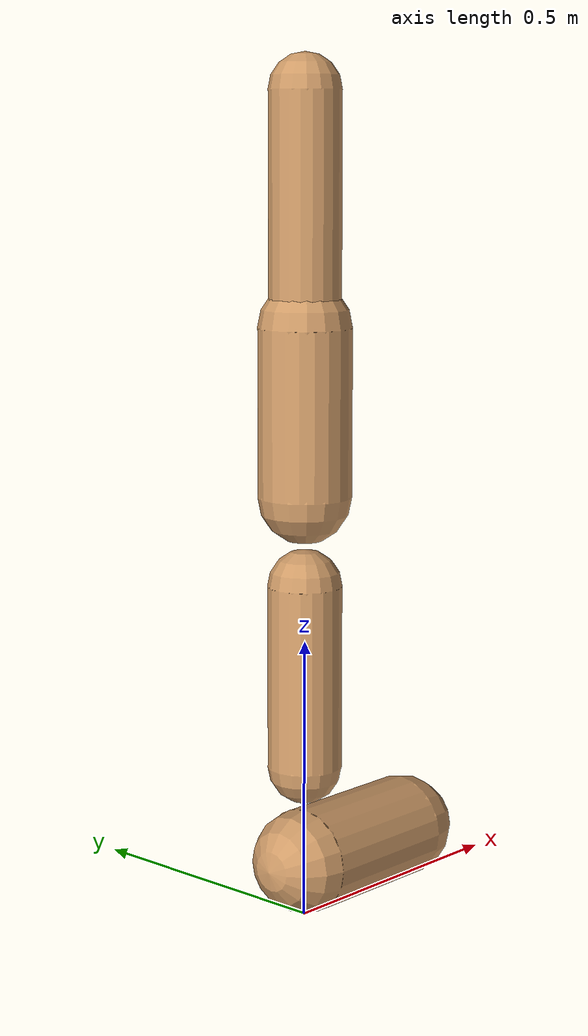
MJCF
<mujoco model="walker2d">
  <compiler angle="degree" coordinate="global" inertiafromgeom="true" />
  <default>
    <joint armature="0.01" damping=".1" limited="true" />
    <geom conaffinity="0" condim="3" contype="1" density="1000" friction="0.8 .1 .1" rgba="0.8 0.6 .4 1" />
  </default>
  <option integrator="RK4" timestep="0.002" />
  <worldbody>

    <body name="torso" pos="0 0 -0.3316927584828532">
      <joint armature="0" axis="1 0 0" damping="0" limited="false" name="ignorex" pos="0 0 0" stiffness="0" type="slide" />
      <joint armature="0" axis="0 0 1" damping="0" limited="false" name="ignorez" pos="0 0 0" ref="1.25" stiffness="0" type="slide" />
      <joint armature="0" axis="0 1 0" damping="0" limited="false" name="ignorey" pos="0 0 0" stiffness="0" type="hinge" />
      <geom fromto="0 0 1.45 0 0 1.05" name="torso_geom" size="0.06298411868847774" type="capsule" />
      <body name="thigh">
        <joint axis="0 -1 0" name="thigh_joint" pos="0 0 1.05" range="-150 0" type="hinge" />
        <geom fromto="0.0 0.0 1.05 0.0 0.0 0.7571176224392462" name="thigh_geom" size="0.08179947306446622" type="capsule" />
        <body name="leg" pos="0.0 0.0 0.1571176224392462">
          <joint axis="0 -1 0" name="leg_joint" pos="0 0 0.6" range="-150 0" type="hinge" />
          <geom fromto="0.0 0.0 0.6 0.0 0.0 0.27457513604360695" name="leg_geom" size="0.06543957845157297" type="capsule" />
          <body name="foot" pos="0.0 0.0 0.17457513604360694">
            <joint axis="0 -1 0" name="foot_joint" pos="0 0 0.1" range="-45 45" type="hinge" />
            <geom fromto="-0.0 0.0 0.1 0.2681082610214377 0.0 0.1" name="foot_geom" size="0.09285175989040088" type="capsule" />
          </body>
        </body>
      </body>

      <body name="thigh_left">
        <joint axis="0 -1 0" name="thigh_left_joint" pos="0 0 1.05" range="-150 0" type="hinge" />
        <geom fromto="0.0 0.0 1.05 0.0 0.0 0.7571176224392462" name="thigh_left_geom" rgba=".7 .3 .6 1" size="0.08179947306446622" type="capsule" />
        <body name="leg_left" pos="0.0 0.0 0.1571176224392462">
          <joint axis="0 -1 0" name="leg_left_joint" pos="0 0 0.6" range="-150 0" type="hinge" />
          <geom fromto="0.0 0.0 0.6 0.0 0.0 0.27457513604360695" name="leg_left_geom" rgba=".7 .3 .6 1" size="0.06543957845157297" type="capsule" />
          <body name="foot_left" pos="0.0 0.0 0.17457513604360694">
            <joint axis="0 -1 0" name="foot_left_joint" pos="0 0 0.1" range="-45 45" type="hinge" />
            <geom fromto="-0.0 0.0 0.1 0.2681082610214377 0.0 0.1" name="foot_left_geom" rgba=".7 .3 .6 1" size="0.09285175989040088" type="capsule" />
          </body>
        </body>
      </body>
    </body>
  </worldbody>
  <actuator>

    <motor ctrllimited="true" ctrlrange="-1.0 1.0" gear="100" joint="thigh_joint" />
    <motor ctrllimited="true" ctrlrange="-1.0 1.0" gear="100" joint="leg_joint" />
    <motor ctrllimited="true" ctrlrange="-1.0 1.0" gear="100" joint="foot_joint" />
    <motor ctrllimited="true" ctrlrange="-1.0 1.0" gear="100" joint="thigh_left_joint" />
    <motor ctrllimited="true" ctrlrange="-1.0 1.0" gear="100" joint="leg_left_joint" />
    <motor ctrllimited="true" ctrlrange="-1.0 1.0" gear="100" joint="foot_left_joint" />

  </actuator>
</mujoco>
